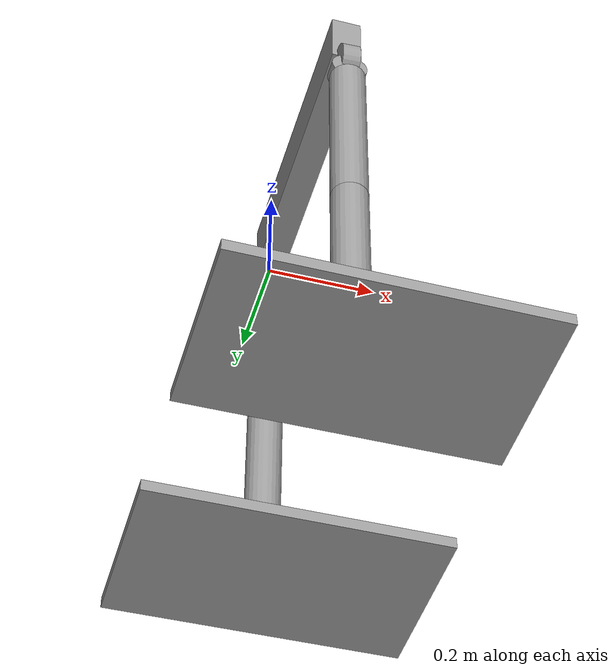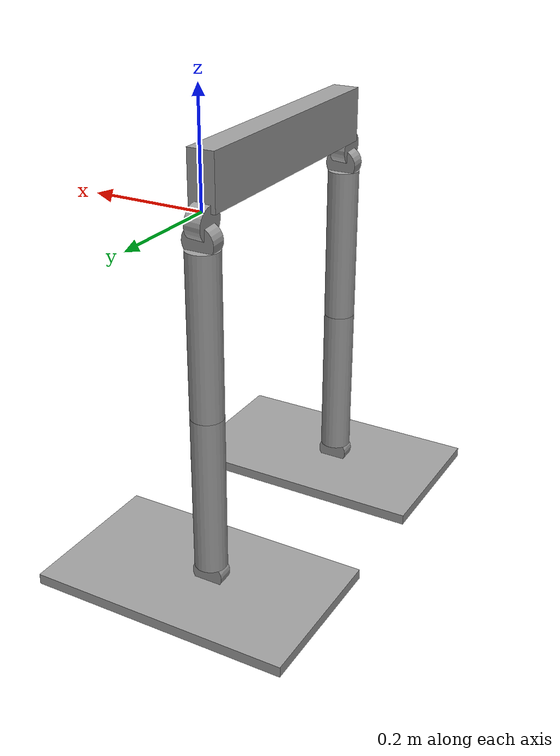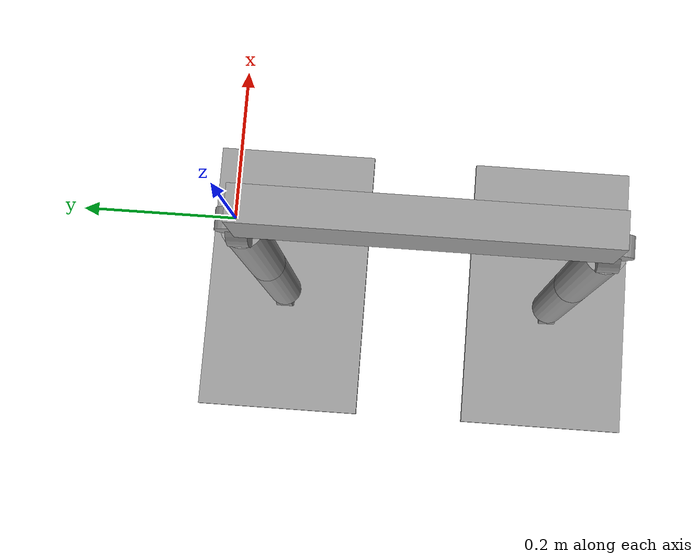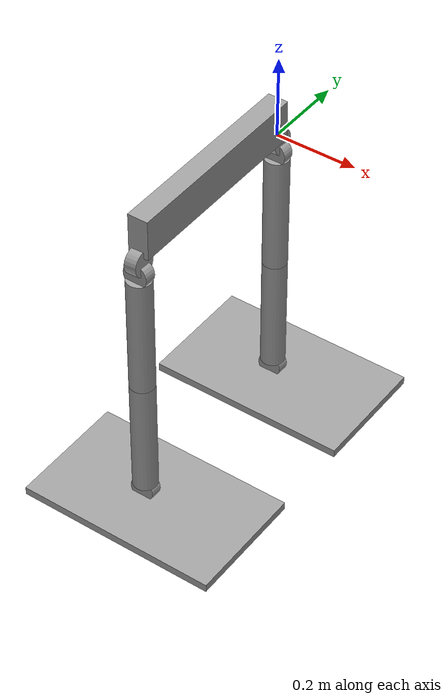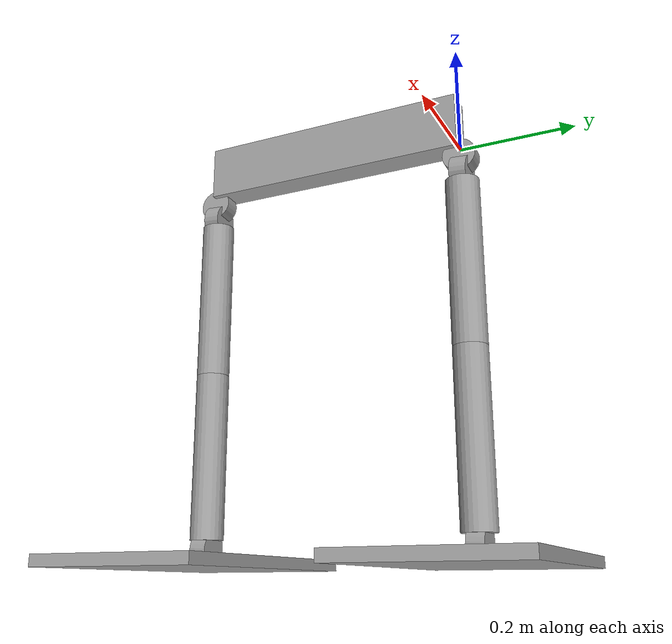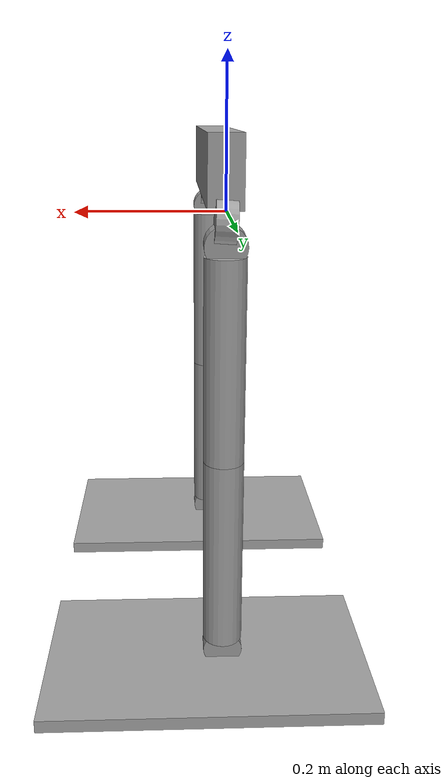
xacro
<robot xmlns:xacro="http://www.ros.org/wiki/xacro" name="stickbot_bipedal_12dof" >
    <xacro:include filename="$(find stickbot_bipedal_12dof)/models/stickbot_bipedal_12dof/xacro/stickbot_bipedal_12dof_base.xacro" />
    <stickbot_bipedal_12dof />

    <link name="world">
        <!-- Virtual Link -->
        <inertial>
            <mass value="0.1"/>
            <origin rpy="0 0 0" xyz="0 0 1.2"/>
            <inertia ixx="8.33333333333e-05" ixy="0.0" ixz="0.0" iyy="8.33333333333e-05" iyz="0.0" izz="0.000125"/>
        </inertial>
    </link>

    <joint name="pelvisOffset" type="fixed">
        <origin rpy="0 0 0" xyz="0 0 0"/>
        <axis xyz="0 0 1"/>
        <parent link="world"/>
        <child link="pelvis"/>
    </joint>

</robot>

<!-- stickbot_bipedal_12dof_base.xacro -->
<robot name="stickbot_bipedal_12dof" xmlns:controller="http://playerstage.sourceforge.net/gazebo/xmlschema/#controller" xmlns:interface="http://playerstage.sourceforge.net/gazebo/xmlschema/#interface" xmlns:sensor="http://playerstage.sourceforge.net/gazebo/xmlschema/#sensor" xmlns:xacro="http://playerstage.sourceforge.net/gazebo/xmlschema/#interface">

  <macro name="stickbot_bipedal_12dof">
    <link name="pelvis">
      <inertial>
        <mass value="3"/>
        <origin xyz="0.0 -0.25 0.0"/>
        <inertia ixx="0.008667" ixy="0" ixz="0" iyy="0.008667" iyz="0" izz="0.01667"/>
      </inertial>
      <visual>
        <origin rpy="0 0 0 " xyz="0.0 -0.25 0.05"/>
        <geometry name="pelvis">
          <box size="0.05 0.5 0.1"/>
        </geometry>
        <material name="grey">
          <color rgba="0.627 0.627 0.627 1"/>
        </material>
      </visual>
      <collision>
        <origin rpy="0 0 0 " xyz="0.0 -0.25 0.05"/>
        <geometry name="pelvis">
          <box size="0.05 0.5 0.1"/>
        </geometry>
      </collision>
    </link>

    <joint name="rightHipSupinator" type="continuous">
      <axis xyz="0 0 1"/>
      <origin rpy="0 0 0" xyz="0 -0.5 0.0"/>
      <dynamics damping="0.1"/>
      <parent link="pelvis"/>
      <child link="rightHipLink1"/>
      <limit effort="100" lower="-3.14" upper="3.14" velocity="1"/>
    </joint>

    <link name="rightHipLink1">
      <inertial>
        <mass value="0.25"/>
        <origin xyz="0.0 0.0 -0.015"/>
        <inertia ixx="0.00015" ixy="0" ixz="0" iyy="0.00015" iyz="0" izz="0.000225"/>
      </inertial>
      <visual>
        <origin rpy="0 1.507 0" xyz="0 0.0 -0.015"/>
        <geometry name="rightHipLink1">
          <cylinder radius="0.03" length="0.03"/>
        </geometry>
        <material name="grey">
          <color rgba="0.627 0.627 0.627 1"/>
        </material>
      </visual>
      <collision>
        <origin rpy="1.507 0 0.0 " xyz="0 0.0 -0.015"/>
        <geometry name="rightHipLink1">
          <cylinder radius="0.03" length="0.03"/>
        </geometry>
      </collision>
    </link>

    <joint name="rightHipExtensor" type="continuous">
      <axis xyz="0 1 0"/>
      <origin rpy="0 0 0" xyz="0 0 -0.03"/>
      <dynamics damping="0.1"/>
      <parent link="rightHipLink1"/>
      <child link="rightHipExtensorLink"/>
      <limit effort="100" lower="-3.14" upper="3.14" velocity="1"/>
    </joint>

    <link name="rightHipExtensorLink">
      <inertial>
        <mass value="0.25"/>
        <origin xyz="0.0 0.0 -0.015"/>
        <inertia ixx="0.00015" ixy="0" ixz="0" iyy="0.00015" iyz="0" izz="0.000225"/>
      </inertial>
      <visual>
        <origin rpy="1.507 0 0" xyz="0 0 -0.015"/>
        <geometry name="rightHipExtensorLink">
          <cylinder radius="0.03" length="0.03"/>
        </geometry>
        <material name="grey">
          <color rgba="0.627 0.627 0.627 1"/>
        </material>
      </visual>
      <collision>
        <origin rpy="1.507 0 0.0 " xyz="0 0 -0.015"/>
        <geometry name="rightHipExtensorLink">
          <cylinder radius="0.03" length="0.03"/>
        </geometry>
      </collision>
    </link>

    <joint name="rightHipAductor" type="continuous">
      <axis xyz="1 0 0"/>
      <origin rpy="0 0 0" xyz="0 0 -0.03"/>
      <parent link="rightHipExtensorLink"/>
      <child link="rightUpperLeg"/>
      <dynamics damping="0.1"/>
      <limit effort="100" lower="-3.14" upper="3.14" velocity="1"/>
    </joint>

    <link name="rightUpperLeg">
      <inertial>
        <mass value="2.0"/>
        <origin xyz="-0.0 0 -0.15"/>
        <inertia ixx="0.01545" ixy="0" ixz="0" iyy="0.01545" iyz="0" izz="0.0009"/>
      </inertial>
      <visual>
        <origin rpy="0 0 0 " xyz="0 0 -0.15"/>
        <geometry name="rightUpperLeg">
          <cylinder radius="0.03" length="0.3"/>
        </geometry>
        <material name="grey">
          <color rgba="0.627 0.627 0.627 1"/>
        </material>
      </visual>
      <collision>
        <origin rpy="0 0 0 " xyz="0 0 -0.3"/>
        <geometry name="rightUpperLeg">
          <cylinder radius="0.03" length="0.3"/>
        </geometry>
      </collision>
    </link>

    <joint name="rightKnee" type="continuous">
      <axis xyz="0 1 0"/>
      <origin rpy="0 0 0" xyz="0 0 -0.3"/>
      <parent link="rightUpperLeg"/>
      <child link="rightLowerLeg"/>
      <dynamics damping="0.1"/>
      <limit effort="100" lower="-3.14" upper="3.14" velocity="1"/>
    </joint>

    <link name="rightLowerLeg">
      <inertial>
        <mass value="2.0"/>
        <origin xyz="-0.0 0 -0.15"/>
        <inertia ixx="0.01545" ixy="0" ixz="0" iyy="0.01545" iyz="0" izz="0.0009"/>
      </inertial>
      <visual>
        <origin rpy="0 0 0 " xyz="0 0 -0.15"/>
        <geometry name="rightLowerLeg">
          <cylinder radius="0.03" length="0.3"/>
        </geometry>
        <material name="grey">
          <color rgba="0.627 0.627 0.627 1"/>
        </material>
      </visual>
      <collision>
        <origin rpy="0 0 0 " xyz="0 0 -0.15"/>
        <geometry name="rightLowerLeg">
          <cylinder radius="0.03" length="0.3"/>
        </geometry>
      </collision>
    </link>

    <joint name="rightAnklePitch" type="continuous">
      <axis xyz="0 1 0"/>
      <origin rpy="0 0 0" xyz="0 0 -0.3"/>
      <dynamics damping="0.1"/>
      <parent link="rightLowerLeg"/>
      <child link="rightAnkleLink"/>
      <limit effort="100" lower="-3.14" upper="3.14" velocity="1"/>
    </joint>

    <link name="rightAnkleLink">
      <inertial>
        <mass value="0.25"/>
        <origin xyz="0.0 0.0 -0.015"/>
        <inertia ixx="0.00015" ixy="0" ixz="0" iyy="0.00015" iyz="0" izz="0.000225"/>
      </inertial>
      <visual>
        <origin rpy="1.507 0 0" xyz="0 0 -0.015"/>
        <geometry name="rightAnkleLink">
          <cylinder radius="0.03" length="0.03"/>
        </geometry>
        <material name="grey">
          <color rgba="0.627 0.627 0.627 1"/>
        </material>
      </visual>
      <collision>
         <origin rpy="1.507 0 0" xyz="0 0 -0.015"/>
        <geometry name="rightAnkleLink">
          <cylinder radius="0.03" length="0.03"/>
        </geometry>
      </collision>
    </link>

    <joint name="rightAnkleRoll" type="continuous">
      <axis xyz="1 0 0"/>
      <origin rpy="0 0 0" xyz="0.025 0 -0.03"/>
      <parent link="rightAnkleLink"/>
      <child link="rightFoot"/>
      <dynamics damping="0.1"/>
      <limit effort="100" lower="-3.14" upper="3.14" velocity="1"/>
    </joint>

    <link name="rightFoot">
      <inertial>
        <mass value="10"/>
        <origin xyz="0.03 0 -0.01"/>
        <inertia ixx="0.008667" ixy="0" ixz="0" iyy="0.008667" iyz="0" izz="0.01667"/>
      </inertial>
      <visual>
        <origin rpy="0 0 0 " xyz="0.0 0 -0.01"/>
        <geometry name="rightFoot">
          <box size="0.5 0.3 0.02"/>
        </geometry>
        <material name="grey">
          <color rgba="0.627 0.627 0.627 1"/>
        </material>
      </visual>
      <collision>
        <origin rpy="0 0 0 " xyz="0.0 0 -0.01"/>
        <geometry name="rightFoot">
          <box size="0.5 0.3 0.02"/>
        </geometry>
      </collision>
    </link>

    <joint name="leftHipSupinator" type="continuous">
      <axis xyz="0 0 1"/>
      <origin rpy="0 0 0" xyz="0 0.0 0.0"/>
      <parent link="pelvis"/>
      <child link="leftHipLink1"/>
      <dynamics damping="0.1"/>
      <limit effort="100" lower="-3.14" upper="3.14" velocity="1"/>
    </joint>

    <link name="leftHipLink1">
      <inertial>
        <mass value="0.25"/>
        <origin xyz="0.0 0.0 -0.015"/>
        <inertia ixx="0.00015" ixy="0" ixz="0" iyy="0.00015" iyz="0" izz="0.000225"/>
      </inertial>
      <visual>
        <origin rpy="0 1.507 0" xyz="0 0.0 -0.015"/>
        <geometry name="leftHipLink1">
          <cylinder radius="0.03" length="0.03"/>
        </geometry>
        <material name="grey">
          <color rgba="0.627 0.627 0.627 1"/>
        </material>
      </visual>
      <collision>
        <origin rpy="1.507 0 0.0 " xyz="0 0.0 -0.015"/>
        <geometry name="leftHipLink1">
          <cylinder radius="0.03" length="0.03"/>
        </geometry>
      </collision>
    </link>

     <joint name="leftHipExtensor" type="continuous">
      <axis xyz="0 1 0"/>
      <origin rpy="0 0 0" xyz="0 0 -0.03"/>
      <parent link="leftHipLink1"/>
      <child link="leftHipExtensorLink"/>
      <dynamics damping="0.1"/>
      <limit effort="100" lower="-3.14" upper="3.14" velocity="1"/>
    </joint>

    <link name="leftHipExtensorLink">
      <inertial>
        <mass value="0.25"/>
        <origin xyz="0.0 0.0 -0.015"/>
        <inertia ixx="0.00015" ixy="0" ixz="0" iyy="0.00015" iyz="0" izz="0.000225"/>
      </inertial>
      <visual>
        <origin rpy="1.507 0 0" xyz="0 0 -0.015"/>
        <geometry name="leftHipExtensorLink">
          <cylinder radius="0.03" length="0.03"/>
        </geometry>
        <material name="grey">
          <color rgba="0.627 0.627 0.627 1"/>
        </material>
      </visual>
      <collision>
        <origin rpy="1.507 0 0.0 " xyz="0 0 -0.015"/>
        <geometry name="leftHipExtensorLink">
          <cylinder radius="0.03" length="0.03"/>
        </geometry>
      </collision>
    </link>

     <joint name="leftHipAductor" type="continuous">
      <axis xyz="1 0 0"/>
      <origin rpy="0 0 0" xyz="0 0 -0.03"/>
      <parent link="leftHipExtensorLink"/>
      <child link="leftUpperLeg"/>
      <dynamics damping="0.1"/>
      <limit effort="100" lower="-3.14" upper="3.14" velocity="1"/>
    </joint>

    <link name="leftUpperLeg">
      <inertial>
        <mass value="2.0"/>
        <origin xyz="-0.0 0 -0.15"/>
        <inertia ixx="0.01545" ixy="0" ixz="0" iyy="0.01545" iyz="0" izz="0.0009"/>
      </inertial>
      <visual>
        <origin rpy="0 0 0 " xyz="0 0 -0.15"/>
        <geometry name="leftUpperLeg">
          <cylinder radius="0.03" length="0.3"/>
        </geometry>
        <material name="grey">
          <color rgba="0.627 0.627 0.627 1"/>
        </material>
      </visual>
      <collision>
        <origin rpy="0 0 0 " xyz="0 0 -0.3"/>
        <geometry name="leftUpperLeg">
          <cylinder radius="0.03" length="0.3"/>
        </geometry>
      </collision>
    </link>

    <joint name="leftKnee" type="continuous">
      <axis xyz="0 1 0"/>
      <origin rpy="0 0 0" xyz="0 0 -0.3"/>
      <parent link="leftUpperLeg"/>
      <child link="leftLowerLeg"/>
      <dynamics damping="0.1"/>
      <limit effort="100" lower="-3.14" upper="3.14" velocity="1"/>
    </joint>

    <link name="leftLowerLeg">
      <inertial>
        <mass value="2.0"/>
        <origin xyz="-0.0 0 -0.15"/>
        <inertia ixx="0.01545" ixy="0" ixz="0" iyy="0.01545" iyz="0" izz="0.0009"/>
      </inertial>
      <visual>
        <origin rpy="0 0 0 " xyz="0 0 -0.15"/>
        <geometry name="leftLowerLeg">
          <cylinder radius="0.03" length="0.3"/>
        </geometry>
        <material name="grey">
          <color rgba="0.627 0.627 0.627 1"/>
        </material>
      </visual>
      <collision>
        <origin rpy="0 0 0 " xyz="0 0 -0.15"/>
        <geometry name="leftLowerLeg">
          <cylinder radius="0.03" length="0.3"/>
        </geometry>
      </collision>
    </link>

    <joint name="leftAnklePitch" type="continuous">
      <axis xyz="0 1 0"/>
      <origin rpy="0 0 0" xyz="0 0 -0.3"/>
      <parent link="leftLowerLeg"/>
      <child link="leftAnkleLink"/>
      <dynamics damping="0.1"/>
      <limit effort="100" lower="-3.14" upper="3.14" velocity="1"/>
    </joint>

    <link name="leftAnkleLink">
      <inertial>
        <mass value="0.25"/>
        <origin xyz="0.0 0.0 -0.015"/>
        <inertia ixx="0.00015" ixy="0" ixz="0" iyy="0.00015" iyz="0" izz="0.000225"/>
      </inertial>
      <visual>
        <origin rpy="1.507 0 0" xyz="0 0 -0.015"/>
        <geometry name="leftAnkleLink">
          <cylinder radius="0.03" length="0.03"/>
        </geometry>
        <material name="grey">
          <color rgba="0.627 0.627 0.627 1"/>
        </material>
      </visual>
      <collision>
        <origin rpy="0 0 0.0 " xyz="0 0 -0.015"/>
        <geometry name="leftAnkleLink">
          <cylinder radius="0.03" length="0.03"/>
        </geometry>
      </collision>
    </link>

    <joint name="leftAnkleRoll" type="continuous">
      <axis xyz="1 0 0"/>
      <origin rpy="0 0 0" xyz="0.025 0 -0.03"/>
      <parent link="leftAnkleLink"/>
      <child link="leftFoot"/>
      <dynamics damping="0.1"/>
      <limit effort="100" lower="-3.14" upper="3.14" velocity="1"/>
    </joint>

    <link name="leftFoot">
      <inertial>
        <mass value="10"/>
        <origin xyz="0.03 0 -0.01"/>
        <inertia ixx="0.008667" ixy="0" ixz="0" iyy="0.008667" iyz="0" izz="0.01667"/>
      </inertial>
      <visual>
        <origin rpy="0 0 0 " xyz="0.0 0 -0.01"/>
        <geometry name="leftFoot">
        <box size="0.5 0.3 0.02"/>
        </geometry>
        <material name="grey">
          <color rgba="0.627 0.627 0.627 1"/>
        </material>
      </visual>
      <collision>
        <origin rpy="0 0 0 " xyz="0.0 0 -0.01"/>
        <geometry name="leftFoot">
          <box size="0.5 0.3 0.02"/>
        </geometry>
      </collision>
    </link>

    <gazebo reference="rightHipSupinator">
      <provideFeedback value="true"/>
    </gazebo>
    <gazebo reference="rightHipExtensor">
      <provideFeedback value="true"/>
    </gazebo>
    <gazebo reference="rightHipAductor">
      <provideFeedback value="true"/>
    </gazebo>
    <gazebo reference="rightKnee">
      <provideFeedback value="true"/>
    </gazebo>
    <gazebo reference="rightAnkleRoll">
      <provideFeedback value="true"/>
    </gazebo>
    <gazebo reference="rightAnklePitch">
      <provideFeedback value="true"/>
    </gazebo>
    <gazebo reference="leftHipSupinator">
      <provideFeedback value="true"/>
    </gazebo>
    <gazebo reference="leftHipExtensor">
      <provideFeedback value="true"/>
    </gazebo>
    <gazebo reference="leftHipAductor">
      <provideFeedback value="true"/>
    </gazebo>
    <gazebo reference="leftKnee">
      <provideFeedback value="true"/>
    </gazebo>
    <gazebo reference="leftAnkleRoll">
      <provideFeedback value="true"/>
    </gazebo>
    <gazebo reference="leftAnklePitch">
      <provideFeedback value="true"/>
    </gazebo>
  </macro>
</robot>
